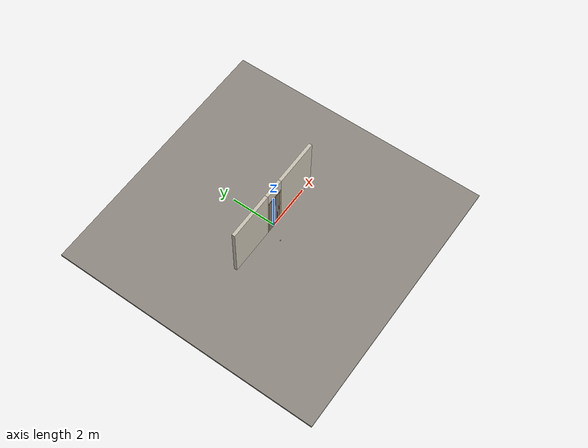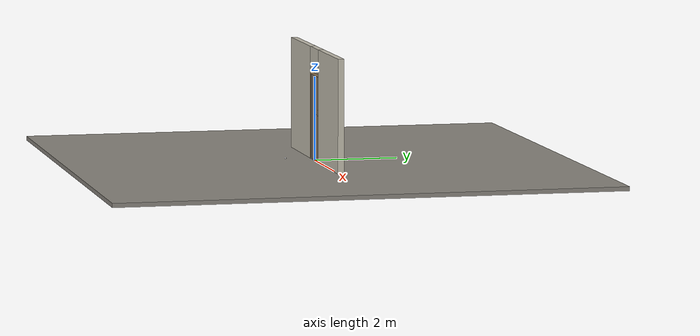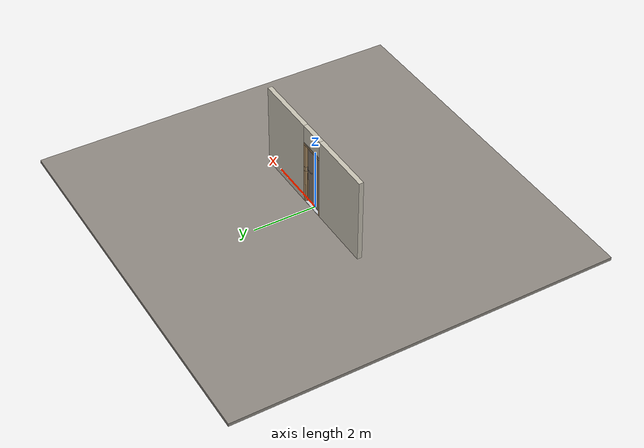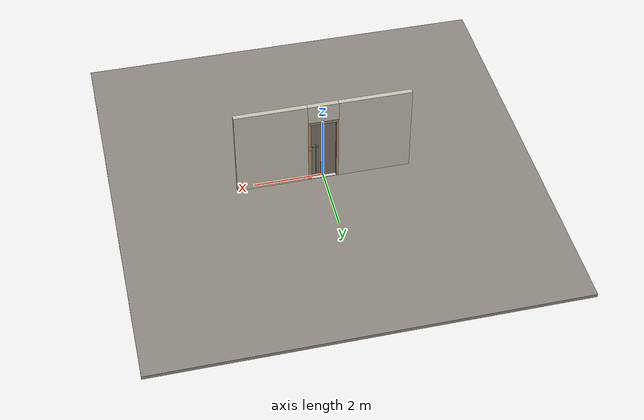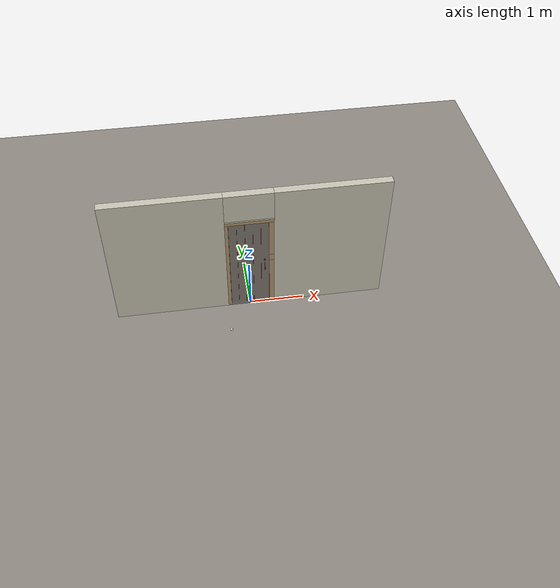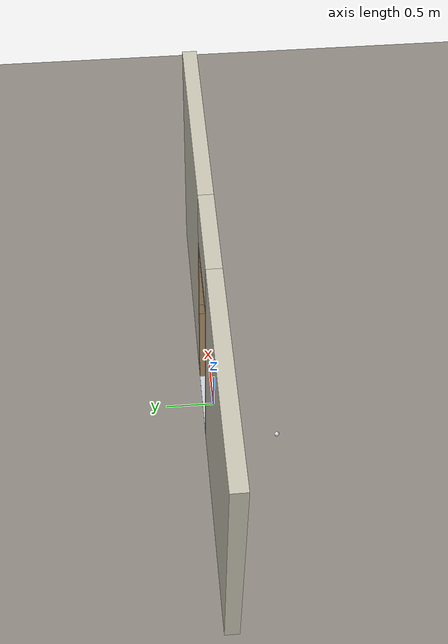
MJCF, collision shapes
<?xml version="1.0" ?>
<mujoco model="db0147_swing_single_full">
  <compiler angle="radian" meshdir="../../hardware" texturedir="../../textures" autolimits="true" inertiafromgeom="false"/>
  <option timestep="0.002" integrator="implicitfast" cone="elliptic" impratio="10" noslip_iterations="3">
    <flag multiccd="enable"/>
  </option>
  <size memory="16M"/>
  <default>
    <geom condim="4" solref="0.005 1" solimp="0.95 0.99 0.001"/>
    <joint solreflimit="0.005 1" solimplimit="0.95 0.99 0.001"/>
    <tendon solreflimit="0.005 1"/>
    <equality solref="0.002 1"/>
  </default>
  <visual>
    <headlight ambient="0.4 0.4 0.4" diffuse="0.7 0.7 0.7" specular="0.2 0.2 0.2"/>
    <quality shadowsize="4096"/>
    <map znear="0.01" zfar="60"/>
  </visual>
  <asset>
    <mesh name="hinge_e22b26c0c1" file="hinge_e22b26c0c1.obj"/>
    <mesh name="hinge_jamb_e1d088f8dc" file="hinge_jamb_e1d088f8dc.obj"/>
    <mesh name="thumb_latch_0073ea78ed" file="thumb_latch_0073ea78ed.obj"/>
    <material name="mat_floor" rgba="0.55 0.53 0.5 1" specular="0.2" shininess="0.15" reflectance="0"/>
    <material name="mat_wall" rgba="0.78 0.76 0.7 1" specular="0.2" shininess="0.1" reflectance="0"/>
    <material name="mat_leaf" rgba="0.5 0.46 0.425 1" specular="0.2" shininess="0.15" reflectance="0"/>
    <material name="mat_leaf_brace" rgba="0.45 0.414 0.383 1" specular="0.2" shininess="0.2" reflectance="0"/>
    <material name="mat_hinge" rgba="0.45 0.3 0.22 1" specular="0.5" shininess="0.1" reflectance="0.2"/>
    <material name="mat_op_wrought_iron" rgba="0.08 0.08 0.09 1" specular="0.56" shininess="0.25" reflectance="0.24"/>
    <material name="mat_frame" rgba="0.7 0.58 0.42 1" specular="0.2" shininess="0.5" reflectance="0"/>
    <material name="mat_threshold" rgba="0.8 0.81 0.83 1" specular="0.8" shininess="0.6" reflectance="0.4"/>
    <material name="mat_stop" rgba="0.9 0.9 0.92 1" specular="0.8" shininess="0.9" reflectance="0.4"/>
    <texture name="skybox" type="skybox" builtin="gradient" rgb1="0.6 0.7 0.85" rgb2="0.9 0.92 0.95" width="256" height="256"/>
  </asset>
  <worldbody>
    <light name="sun" pos="1.5 -2.5 4" dir="-0.3 0.5 -0.8" directional="true" diffuse="0.8 0.8 0.8" specular="0.3 0.3 0.3" castshadow="true"/>
    <light name="fill" pos="-1.5 2.5 3" dir="0.3 -0.5 -0.7" directional="true" diffuse="0.35 0.35 0.4" castshadow="false"/>
    <camera name="robot_view" pos="0 -2.498687 1.734312" xyaxes="1 0 0 0 0.26963 0.962964" fovy="52"/>
    <camera name="far_view" pos="0 2.585687 1.734312" xyaxes="-1 0 0 0 -0.26963 0.962964" fovy="52"/>
    <camera name="iso" pos="1.932062 -2.091938 2.141063" xyaxes="0.741536 0.670913 0 -0.242917 0.268487 0.932151" fovy="46"/>
    <camera name="detail_handle" pos="0.4545 -0.857 1.28" xyaxes="0.97561 0.219512 0 -0.070934 0.315262 0.94635" fovy="38"/>
    <geom name="floor" type="box" size="6 6 0.05" pos="0 0 -0.05" material="mat_floor" group="0" contype="1" conaffinity="1" friction="0.8 0.005 0.0001" density="2400"/>
    <geom name="wall_left" type="box" size="1.04025 0.0725 1.35" pos="-1.45975 0.0435 1.35" material="mat_wall" group="0" contype="1" conaffinity="1" friction="0.6 0.005 0.0001" density="800"/>
    <geom name="wall_right" type="box" size="1.02525 0.0725 1.35" pos="1.47475 0.0435 1.35" material="mat_wall" group="0" contype="1" conaffinity="1" friction="0.6 0.005 0.0001" density="800"/>
    <geom name="wall_header" type="box" size="0.4345 0.0725 0.2825" pos="0.015 0.0435 2.4175" material="mat_wall" group="0" contype="1" conaffinity="1" friction="0.6 0.005 0.0001" density="800"/>
    <geom name="hinge_0_jamb" type="mesh" mesh="hinge_jamb_e1d088f8dc" pos="-0.3565 -0.029 0.267" material="mat_hinge" group="1" contype="0" conaffinity="0" density="7850"/>
    <geom name="hinge_1_jamb" type="mesh" mesh="hinge_jamb_e1d088f8dc" pos="-0.3565 -0.029 1.029" material="mat_hinge" group="1" contype="0" conaffinity="0" density="7850"/>
    <geom name="hinge_2_jamb" type="mesh" mesh="hinge_jamb_e1d088f8dc" pos="-0.3565 -0.029 1.861" material="mat_hinge" group="1" contype="0" conaffinity="0" density="7850"/>
    <geom name="leaf_latch_bar_keeper_b" type="box" size="0.015 0.0025 0.0005" pos="0.359 0.034 1.1125" quat="-0.5 -0.5 0.5 0.5" material="mat_op_wrought_iron" group="1" contype="0" conaffinity="0" density="7800"/>
    <geom name="leaf_latch_bar_keeper_l" type="box" size="0.0025 0.07 0.0005" pos="0.359 0.0465 1.185" quat="-0.5 -0.5 0.5 0.5" material="mat_op_wrought_iron" group="1" contype="0" conaffinity="0" density="7800"/>
    <geom name="leaf_latch_bar_keeper_t" type="box" size="0.015 0.0025 0.0005" pos="0.359 0.034 1.2575" quat="-0.5 -0.5 0.5 0.5" material="mat_op_wrought_iron" group="1" contype="0" conaffinity="0" density="7800"/>
    <geom name="leaf_latch_bar_keeper_r" type="box" size="0.0025 0.07 0.0005" pos="0.359 0.0215 1.185" quat="-0.5 -0.5 0.5 0.5" material="mat_op_wrought_iron" group="1" contype="0" conaffinity="0" density="7800"/>
    <geom name="jamb_hinge" type="box" size="0.03 0.0725 1.0225" pos="-0.3895 0.0435 1.0225" material="mat_frame" group="0" contype="1" conaffinity="1" friction="0.6 0.005 0.0001" density="750"/>
    <geom name="strike_1185_wall_n" type="box" size="0.045 0.036 0.07" pos="0.4045 0.08 1.185" material="mat_frame" group="0" contype="1" conaffinity="1" friction="0.6 0.005 0.0001" density="750"/>
    <geom name="strike_1185_wall_p" type="box" size="0.045 0.0265 0.07" pos="0.4045 -0.0025 1.185" material="mat_frame" group="0" contype="1" conaffinity="1" friction="0.6 0.005 0.0001" density="750"/>
    <geom name="strike_1185_back" type="box" size="0.035 0.01 0.07" pos="0.4145 0.034 1.185" material="mat_frame" group="0" contype="1" conaffinity="1" friction="0.6 0.005 0.0001" density="750"/>
    <geom name="jamb_strike_0" type="box" size="0.045 0.0725 0.5575" pos="0.4045 0.0435 0.5575" material="mat_frame" group="0" contype="1" conaffinity="1" friction="0.6 0.005 0.0001" density="750"/>
    <geom name="jamb_strike_1" type="box" size="0.045 0.0725 0.395" pos="0.4045 0.0435 1.65" material="mat_frame" group="0" contype="1" conaffinity="1" friction="0.6 0.005 0.0001" density="750"/>
    <geom name="jamb_head" type="box" size="0.4345 0.0725 0.03" pos="0.015 0.0435 2.075" material="mat_frame" group="0" contype="1" conaffinity="1" friction="0.6 0.005 0.0001" density="750"/>
    <geom name="head_stud" type="box" size="0.4345 0.0725 0.015" pos="0.015 0.0435 2.12" material="mat_wall" group="0" contype="1" conaffinity="1" friction="0.6 0.005 0.0001" density="500"/>
    <geom name="stop_hinge" type="box" size="0.0055 0.016 1.0225" pos="-0.354 0.0385 1.0225" material="mat_frame" group="0" contype="1" conaffinity="1" friction="0.6 0.005 0.0001" density="750"/>
    <geom name="stop_strike" type="box" size="0.0055 0.016 0.5515" pos="0.354 0.0385 0.5515" material="mat_frame" group="0" contype="1" conaffinity="1" friction="0.6 0.005 0.0001" density="750"/>
    <geom name="stop_strike_1" type="box" size="0.0055 0.016 0.389" pos="0.354 0.0385 1.656" material="mat_frame" group="0" contype="1" conaffinity="1" friction="0.6 0.005 0.0001" density="750"/>
    <geom name="stop_head" type="box" size="0.3595 0.016 0.0055" pos="0 0.0385 2.0395" material="mat_frame" group="0" contype="1" conaffinity="1" friction="0.6 0.005 0.0001" density="750"/>
    <geom name="threshold" type="box" size="0.4195 0.0725 0.0065" pos="0 0.0435 0.0065" material="mat_threshold" group="0" contype="1" conaffinity="1" friction="0.5 0.005 0.0001" density="2700"/>
    <geom name="floor_stop_dome" type="sphere" size="0.025" pos="-0.429096 -0.629307 0" material="mat_stop" group="0" contype="1" conaffinity="1" friction="0.6 0.005 0.0001" density="7000"/>
    <site name="approach_point" pos="0 -1.5 0" quat="1 0 0 0" size="0.05" rgba="0.2 0.9 0.2 0.5" group="4"/>
    <site name="goal_point" pos="0 1.5 0" quat="1 0 0 0" size="0.05" rgba="0.2 0.9 0.2 0.5" group="4"/>
    <site name="door_plane_center" pos="0 0 1.0225" quat="1 0 0 0" size="0.02" rgba="0.2 0.9 0.2 0.5" group="4"/>
    <body name="leaf" pos="-0.3595 0 0">
      <inertial pos="0.35757 -0.001408 1.028967" mass="31.464698" quat="0.499551 0.501071 0.498891 -0.500485" diaginertia="1.417891697 10.529341326 11.933760533"/>
      <joint name="leaf_hinge" type="hinge" axis="0 0 -1" pos="0.003 -0.029 0" limited="true" range="0 1.658063" damping="0.143782" frictionloss="9.555264" armature="0.02"/>
      <geom name="leaf_slab" type="box" size="0.3555 0.022 1.012" pos="0.3585 0 1.029" material="mat_leaf" group="0" contype="1" conaffinity="1" friction="0.45 0.005 0.0001" density="1"/>
      <geom name="leaf_plank_gap_1" type="box" size="0.002 0.023 1.002" pos="0.1452 0 1.029" material="mat_leaf_brace" group="1" contype="0" conaffinity="0" density="1"/>
      <geom name="leaf_plank_gap_2" type="box" size="0.002 0.023 1.002" pos="0.2874 0 1.029" material="mat_leaf_brace" group="1" contype="0" conaffinity="0" density="1"/>
      <geom name="leaf_plank_gap_3" type="box" size="0.002 0.023 1.002" pos="0.4296 0 1.029" material="mat_leaf_brace" group="1" contype="0" conaffinity="0" density="1"/>
      <geom name="leaf_plank_gap_4" type="box" size="0.002 0.023 1.002" pos="0.5718 0 1.029" material="mat_leaf_brace" group="1" contype="0" conaffinity="0" density="1"/>
      <geom name="hinge_0" type="mesh" mesh="hinge_e22b26c0c1" pos="0.003 -0.029 0.267" material="mat_hinge" group="1" contype="0" conaffinity="0" density="7850"/>
      <geom name="hinge_1" type="mesh" mesh="hinge_e22b26c0c1" pos="0.003 -0.029 1.029" material="mat_hinge" group="1" contype="0" conaffinity="0" density="7850"/>
      <geom name="hinge_2" type="mesh" mesh="hinge_e22b26c0c1" pos="0.003 -0.029 1.861" material="mat_hinge" group="1" contype="0" conaffinity="0" density="7850"/>
      <geom name="leaf_suffolk_grip" type="mesh" mesh="thumb_latch_0073ea78ed" pos="0.634 -0.022 1" quat="0.707107 0.707107 0 0" material="mat_op_wrought_iron" group="1" contype="0" conaffinity="0" density="7000"/>
      <geom name="leaf_suffolk_grip_col" type="capsule" size="0.008 0.09" pos="0.634 -0.057 1" material="mat_op_wrought_iron" group="3" contype="1" conaffinity="1" rgba="0.8 0.3 0.3 0.25" friction="0.7 0.01 0.0001" density="7000"/>
      <geom name="leaf_latch_bar_pivot" type="box" size="0.018 0.002 0.018" pos="0.514 0.024 1.14" material="mat_op_wrought_iron" group="1" contype="0" conaffinity="0" density="7000"/>
      <geom name="leaf_latch_bar_pin" type="cylinder" size="0.005 0.01" pos="0.514 0.032 1.14" quat="0.707107 -0.707107 0 0" material="mat_op_wrought_iron" group="1" contype="0" conaffinity="0" density="7000"/>
      <site name="leaf_grip_n" pos="0.634 -0.057 1" quat="1 0 0 0" size="0.012" rgba="0.2 0.9 0.2 0.5" group="4"/>
      <site name="leaf_edge_mid" pos="0.714 0 1.012" quat="1 0 0 0" size="0.02" rgba="0.2 0.9 0.2 0.5" group="4"/>
      <body name="leaf_thumb" pos="0.634 -0.022 1.145">
        <inertial pos="0 -0.002591 -0.005803" mass="0.128464" quat="0.698937 -0.107178 -0.107178 -0.698937" diaginertia="0.000010795 0.000049998 0.000051452"/>
        <joint name="leaf_thumb_hinge" type="hinge" axis="1 0 0" limited="true" range="0 0.3" damping="0.155346" frictionloss="0.032" stiffness="0.6" springref="-0.5" armature="0.01"/>
        <geom name="leaf_thumb_geom" type="box" size="0.015 0.014 0.003" pos="0 -0.02 0" material="mat_op_wrought_iron" group="0" contype="1" conaffinity="1" friction="0.6 0.005 0.0001" density="7000"/>
        <geom name="leaf_thumb_boss" type="box" size="0.012 0.008 0.013" pos="0 -0.004 -0.005" material="mat_op_wrought_iron" group="1" contype="0" conaffinity="0" density="7000"/>
        <geom name="leaf_thumb_lifter" type="box" size="0.004 0.026 0.004" pos="0 0.028 -0.017" material="mat_op_wrought_iron" group="1" contype="0" conaffinity="0" density="7000"/>
        <site name="leaf_thumb_push" pos="0 -0.024 0.005" quat="1 0 0 0" size="0.01" rgba="0.2 0.9 0.2 0.5" group="4"/>
      </body>
      <body name="leaf_latch_bar" pos="0.514 0.034 1.14">
        <inertial pos="0.106 0 0" mass="0.25" quat="0 0 0.707107 0.707107" diaginertia="0.000004465 0.000904065 0.000904065"/>
        <joint name="leaf_latch_bar_hinge" type="hinge" axis="0 -1 0" limited="true" range="0 0.6" damping="0.01" frictionloss="0.01" armature="0.005"/>
        <geom name="leaf_latch_bar_geom" type="capsule" size="0.006 0.1" pos="0.106 0 0" quat="0.707107 0 0.707107 0" material="mat_op_wrought_iron" group="0" contype="1" conaffinity="1" friction="0.6 0.005 0.0001" density="7850"/>
      </body>
    </body>
  </worldbody>
  <equality>
    <joint name="leaf_thumb_couple" joint1="leaf_latch_bar_hinge" joint2="leaf_thumb_hinge" polycoef="0 2 0 0 0" active="true"/>
  </equality>
  <sensor>
    <jointpos name="leaf_hinge_pos" joint="leaf_hinge"/>
    <jointvel name="leaf_hinge_vel" joint="leaf_hinge"/>
    <jointpos name="leaf_thumb_hinge_pos" joint="leaf_thumb_hinge"/>
    <jointvel name="leaf_thumb_hinge_vel" joint="leaf_thumb_hinge"/>
    <jointpos name="leaf_latch_bar_hinge_pos" joint="leaf_latch_bar_hinge"/>
    <jointvel name="leaf_latch_bar_hinge_vel" joint="leaf_latch_bar_hinge"/>
  </sensor>
</mujoco>
